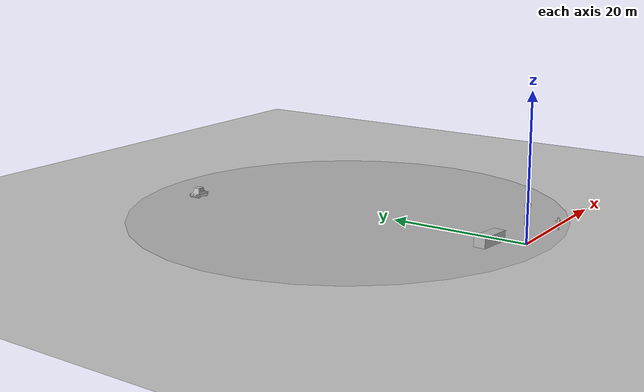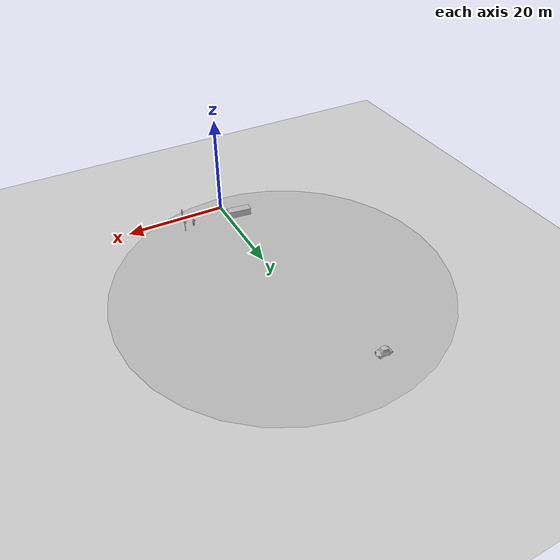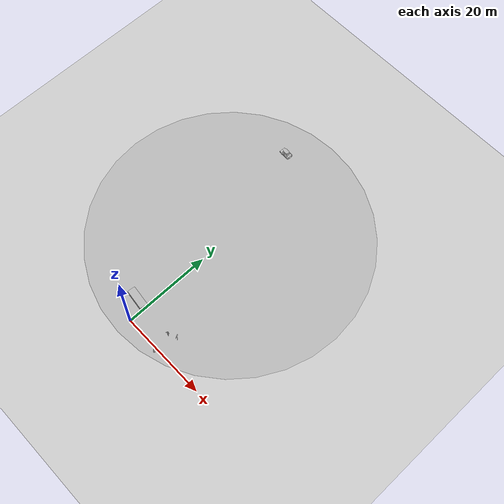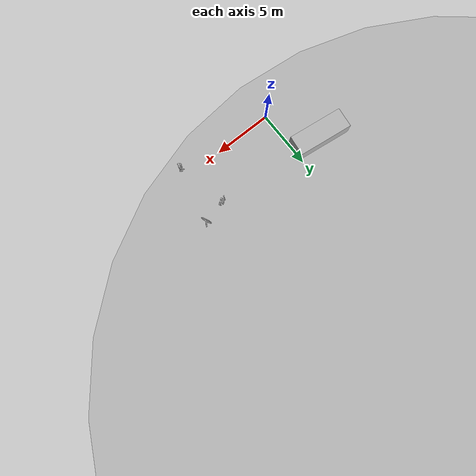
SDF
<sdf version="1.4">
 <world name="default">
  <physics type="ode">
   <gravity>0 0 -9.81</gravity>
   <ode>
    <solver><type>world</type><iters>500</iters><sor>1.0</sor></solver>
    <constraints>
     <cfm>0.0</cfm>
     <erp>0.2</erp>
     <contact_max_correcting_vel>0.1</contact_max_correcting_vel>
     <contact_surface_layer>0.0</contact_surface_layer>
    </constraints>
   </ode>
   <real_time_update_rate>1000</real_time_update_rate>
   <max_step_size>0.001</max_step_size>
  </physics>
  <include><uri>model://loop_freeway</uri><name>loop_freeway</name><pose>0 27.928473 0.01 0 0 0</pose></include>
  <include><uri>model://ground_plane</uri></include>
  <include>
   <uri>model://speed_limit_80</uri>
   <name>speed_limit_80_1</name>
   <pose>9.634830 4.317166 -0.154945 0 0 0.397512</pose>
  </include>
  <include>
   <uri>model://car_passat</uri>
   <name>car_passat1</name>
   <pose>-1.668908 3.828455 0.320109 0 0 -1.690554</pose>
  </include>
  <include>
   <uri>model://old_car</uri>
   <name>old_car1</name>
   <pose>-6.198360 50.704773 -0.011254 0 0 3.125236</pose>
  </include>
  <include>
   <uri>model://person_ken</uri>
   <name>person_ken1</name>
   <pose>7.524980 3.617249 0.148014 0 0 0</pose>
  </include>
  <include>
   <uri>model://person_ken</uri>
   <name>person_ken2</name>
   <pose>8.372791 -0.742244 0.046237 0 0 -1.894694</pose>
  </include>
  <include><uri>model://sun</uri></include>
  <plugin name="traffic_light_manager_world_plugin" filename="libtraffic_light_manager_world_plugin.so">
   <update_frequency>1.0</update_frequency>
   <model_traffic_lights>traffic_light1</model_traffic_lights>
  </plugin>
 </world>
</sdf>

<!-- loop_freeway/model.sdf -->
<sdf version='1.6'>
  <model name='loop_freeway'>
    <link name='link_1'>
         <visual name='visual'>
        <pose frame=''>0 0 0 0 -0 0</pose>
        <geometry>
          <mesh>
            <uri>model://loop_freeway/meshes/loop_hq.dae</uri>
            <scale>1.0 1.0 1.0</scale>
          </mesh>
        </geometry>
        <cast_shadows>0</cast_shadows>
        <transparency>0</transparency>
      </visual>
    </link>

    <static>1</static>
    <allow_auto_disable>1</allow_auto_disable>
  </model>
</sdf>

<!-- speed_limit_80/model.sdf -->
<sdf version='1.6'>
  <model name='speed_limit_80'>
    <link name='link_1'>
         <visual name='visual'>
        <pose frame=''>0 0 0 0 -0 0</pose>
        <geometry>
          <mesh>
            <uri>model://speed_limit_80/meshes/speed_limit_80.dae</uri>
            <scale>2.0 2.0 2.0</scale>
          </mesh>
        </geometry>
        <cast_shadows>0</cast_shadows>
        <transparency>0</transparency>
      </visual>
      <collision name='collision'>
        <laser_retro>0</laser_retro>
        <max_contacts>10</max_contacts>
        <pose frame=''>0 0 0 0 -0 0</pose>
        <geometry>
          <mesh>
            <uri>model://speed_limit_80/meshes/speed_limit_80.dae</uri>
            <scale>2.0 2.0 2.0</scale>
          </mesh>
        </geometry>
     </collision>
    </link>

    <static>1</static>
    <allow_auto_disable>1</allow_auto_disable>
  </model>

</sdf>

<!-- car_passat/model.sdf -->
<sdf version='1.6'>
  <model name='car_passat'>
    <link name='link_1'>
      <visual name='visual'>
        <pose frame=''>0 0 0 0 -0 0</pose>
        <geometry>
          <mesh>
            <uri>model://car_passat/meshes/car_passat.dae</uri>
            <scale>1.0 1.0 1.0</scale>
          </mesh>
        </geometry>
        <cast_shadows>0</cast_shadows>
        <transparency>0</transparency>
      </visual>
      <collision name='collision'>
        <laser_retro>0</laser_retro>
        <max_contacts>10</max_contacts>
        <pose frame=''>0 0 0 0 -0 0</pose>
        <geometry>
          <mesh>
            <uri>model://car_passat/meshes/car_passat.stl</uri>
            <scale>1.0 1.0 1.0</scale>
          </mesh>
        </geometry>
     </collision>
    </link>

    <static>1</static>
    <allow_auto_disable>1</allow_auto_disable>
  </model>
</sdf>

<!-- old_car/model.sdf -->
<sdf version='1.6'>
  <model name='old_car'>
    <link name='link_1'>
      <visual name='visual'>
        <pose frame=''>0 0 0 0 -0 0</pose>
        <geometry>
          <mesh>
            <uri>model://old_car/meshes/old_car.dae</uri>
            <scale>1.0 1.0 1.0</scale>
          </mesh>
        </geometry>
        <cast_shadows>0</cast_shadows>
        <transparency>0</transparency>
      </visual>
      <collision name='collision'>
        <laser_retro>0</laser_retro>
        <max_contacts>10</max_contacts>
        <pose frame=''>0 0 0 0 -0 0</pose>
        <geometry>
          <mesh>
            <uri>model://old_car/meshes/old_car.stl</uri>
            <scale>1.0 1.0 1.0</scale>
          </mesh>
        </geometry>
     </collision>
    </link>

    <static>1</static>
    <allow_auto_disable>1</allow_auto_disable>
  </model>
</sdf>

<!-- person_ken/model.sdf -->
<sdf version='1.6'>
  <model name='person_ken'>
    <link name='link_1'>

    <inertial>
        <mass>1.0</mass>
        <inertia> <!-- inertias are tricky to compute -->
          <!-- http://gazebosim.org/tutorials?tut=inertia&cat=build_robot -->
          <ixx>0.001666666666666667</ixx>       <!-- for a box: ixx = 0.083 * mass * (y*y + z*z) -->
          <ixy>0.0</ixy>         <!-- for a box: ixy = 0 -->
          <ixz>0.0</ixz>         <!-- for a box: ixz = 0 -->
          <iyy>0.001666666666666667</iyy>       <!-- for a box: iyy = 0.083 * mass * (x*x + z*z) -->
          <iyz>0.0</iyz>         <!-- for a box: iyz = 0 -->
          <izz>0.001666666666666667</izz>       <!-- for a box: izz = 0.083 * mass * (x*x + y*y) -->
        </inertia>
      </inertial>
         <visual name='visual'>
        <pose frame=''>0 0 0 0 -0 0</pose>
        <geometry>
          <mesh>
            <uri>model://person_ken/meshes/person_ken.dae</uri>
            <scale>1.0 1.0 1.0</scale>
          </mesh>
        </geometry>
        <cast_shadows>0</cast_shadows>
        <transparency>0</transparency>
      </visual>
      <collision name='collision'>
        <laser_retro>0</laser_retro>
        <max_contacts>10</max_contacts>
        <pose frame=''>0 0 0 0 -0 0</pose>
        <geometry>
          <mesh>
            <uri>model://person_ken/meshes/person_ken.stl</uri>
            <scale>1.0 1.0 1.0</scale>
          </mesh>
        </geometry>
     </collision>
    </link>

    <static>1</static>
    <allow_auto_disable>1</allow_auto_disable>
  </model>
</sdf>
